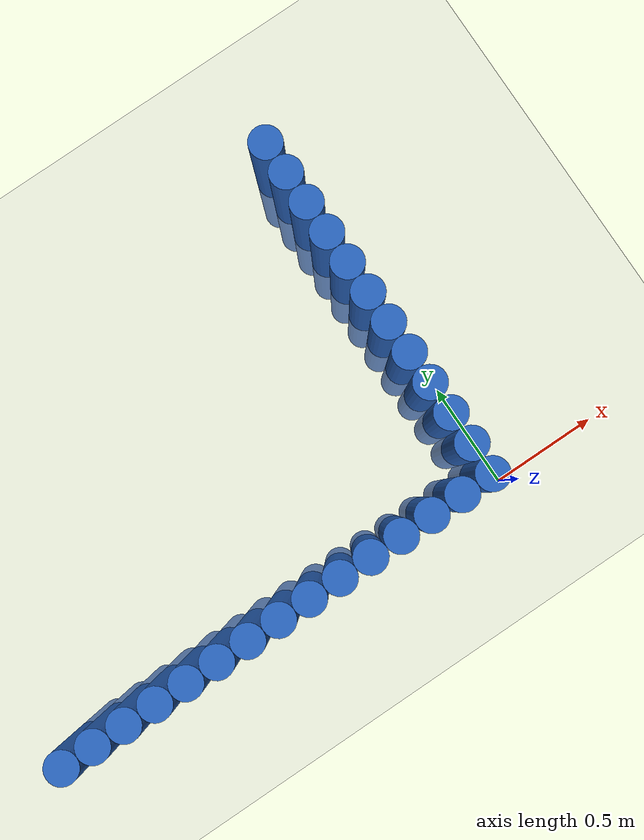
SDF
<sdf version="1.6">
 <world name="world_9">
  <model name="ground_plane">
   <static>1</static>
   <link name="link">
    <collision name="collision">
     <geometry><plane><normal>0 0 1</normal><size>100 100</size></plane></geometry>
     <surface><friction><ode><mu>100</mu><mu2>50</mu2></ode></friction></surface>
    </collision>
    <visual name="visual">
     <cast_shadows>0</cast_shadows>
     <geometry><plane><normal>0 0 1</normal><size>100 100</size></plane></geometry>
     <material>
      <script><uri>file://media/materials/scripts/gazebo.material</uri><name>Gazebo/Grey</name></script>
     </material>
    </visual>
   </link>
  </model>
  <model name="unit_cylinder_0">
   <static>1</static>
   <pose>-0.075000 0.075000 0.000000 0.000000 0.000000 0.000000</pose>
   <link name="link">
    <inertial>
     <mass>1</mass>
     <inertia><ixx>0.145833</ixx><ixy>0</ixy><ixz>0</ixz><iyy>0.145833</iyy><iyz>0</iyz><izz>0.125</izz></inertia>
    </inertial>
    <collision name="collision">
     <geometry><cylinder><radius>0.075000</radius><length>1</length></cylinder></geometry>
    </collision>
    <visual name="visual">
     <geometry><cylinder><radius>0.075000</radius><length>1</length></cylinder></geometry>
     <material>
      <ambient>0.152000 0.379000 0.720000 1</ambient>
      <diffuse>0.152000 0.379000 0.720000 1</diffuse>
     </material>
     <material>
      <script><name>Gazebo/Grey</name><uri>file://media/materials/scripts/gazebo.material</uri></script>
     </material>
    </visual>
   </link>
  </model>
  <model name="unit_cylinder_1">
   <static>1</static>
   <pose>-0.225000 0.075000 0.000000 0.000000 0.000000 0.000000</pose>
   <link name="link">
    <inertial>
     <mass>1</mass>
     <inertia><ixx>0.145833</ixx><ixy>0</ixy><ixz>0</ixz><iyy>0.145833</iyy><iyz>0</iyz><izz>0.125</izz></inertia>
    </inertial>
    <collision name="collision">
     <geometry><cylinder><radius>0.075000</radius><length>1</length></cylinder></geometry>
    </collision>
    <visual name="visual">
     <geometry><cylinder><radius>0.075000</radius><length>1</length></cylinder></geometry>
     <material>
      <ambient>0.152000 0.379000 0.720000 1</ambient>
      <diffuse>0.152000 0.379000 0.720000 1</diffuse>
     </material>
     <material>
      <script><name>Gazebo/Grey</name><uri>file://media/materials/scripts/gazebo.material</uri></script>
     </material>
    </visual>
   </link>
  </model>
  <model name="unit_cylinder_2">
   <static>1</static>
   <pose>-0.375000 0.075000 0.000000 0.000000 0.000000 0.000000</pose>
   <link name="link">
    <inertial>
     <mass>1</mass>
     <inertia><ixx>0.145833</ixx><ixy>0</ixy><ixz>0</ixz><iyy>0.145833</iyy><iyz>0</iyz><izz>0.125</izz></inertia>
    </inertial>
    <collision name="collision">
     <geometry><cylinder><radius>0.075000</radius><length>1</length></cylinder></geometry>
    </collision>
    <visual name="visual">
     <geometry><cylinder><radius>0.075000</radius><length>1</length></cylinder></geometry>
     <material>
      <ambient>0.152000 0.379000 0.720000 1</ambient>
      <diffuse>0.152000 0.379000 0.720000 1</diffuse>
     </material>
     <material>
      <script><name>Gazebo/Grey</name><uri>file://media/materials/scripts/gazebo.material</uri></script>
     </material>
    </visual>
   </link>
  </model>
  <model name="unit_cylinder_3">
   <static>1</static>
   <pose>-0.525000 0.075000 0.000000 0.000000 0.000000 0.000000</pose>
   <link name="link">
    <inertial>
     <mass>1</mass>
     <inertia><ixx>0.145833</ixx><ixy>0</ixy><ixz>0</ixz><iyy>0.145833</iyy><iyz>0</iyz><izz>0.125</izz></inertia>
    </inertial>
    <collision name="collision">
     <geometry><cylinder><radius>0.075000</radius><length>1</length></cylinder></geometry>
    </collision>
    <visual name="visual">
     <geometry><cylinder><radius>0.075000</radius><length>1</length></cylinder></geometry>
     <material>
      <ambient>0.152000 0.379000 0.720000 1</ambient>
      <diffuse>0.152000 0.379000 0.720000 1</diffuse>
     </material>
     <material>
      <script><name>Gazebo/Grey</name><uri>file://media/materials/scripts/gazebo.material</uri></script>
     </material>
    </visual>
   </link>
  </model>
  <model name="unit_cylinder_4">
   <static>1</static>
   <pose>-0.675000 0.075000 0.000000 0.000000 0.000000 0.000000</pose>
   <link name="link">
    <inertial>
     <mass>1</mass>
     <inertia><ixx>0.145833</ixx><ixy>0</ixy><ixz>0</ixz><iyy>0.145833</iyy><iyz>0</iyz><izz>0.125</izz></inertia>
    </inertial>
    <collision name="collision">
     <geometry><cylinder><radius>0.075000</radius><length>1</length></cylinder></geometry>
    </collision>
    <visual name="visual">
     <geometry><cylinder><radius>0.075000</radius><length>1</length></cylinder></geometry>
     <material>
      <ambient>0.152000 0.379000 0.720000 1</ambient>
      <diffuse>0.152000 0.379000 0.720000 1</diffuse>
     </material>
     <material>
      <script><name>Gazebo/Grey</name><uri>file://media/materials/scripts/gazebo.material</uri></script>
     </material>
    </visual>
   </link>
  </model>
  <model name="unit_cylinder_5">
   <static>1</static>
   <pose>-0.825000 0.075000 0.000000 0.000000 0.000000 0.000000</pose>
   <link name="link">
    <inertial>
     <mass>1</mass>
     <inertia><ixx>0.145833</ixx><ixy>0</ixy><ixz>0</ixz><iyy>0.145833</iyy><iyz>0</iyz><izz>0.125</izz></inertia>
    </inertial>
    <collision name="collision">
     <geometry><cylinder><radius>0.075000</radius><length>1</length></cylinder></geometry>
    </collision>
    <visual name="visual">
     <geometry><cylinder><radius>0.075000</radius><length>1</length></cylinder></geometry>
     <material>
      <ambient>0.152000 0.379000 0.720000 1</ambient>
      <diffuse>0.152000 0.379000 0.720000 1</diffuse>
     </material>
     <material>
      <script><name>Gazebo/Grey</name><uri>file://media/materials/scripts/gazebo.material</uri></script>
     </material>
    </visual>
   </link>
  </model>
  <model name="unit_cylinder_6">
   <static>1</static>
   <pose>-0.975000 0.075000 0.000000 0.000000 0.000000 0.000000</pose>
   <link name="link">
    <inertial>
     <mass>1</mass>
     <inertia><ixx>0.145833</ixx><ixy>0</ixy><ixz>0</ixz><iyy>0.145833</iyy><iyz>0</iyz><izz>0.125</izz></inertia>
    </inertial>
    <collision name="collision">
     <geometry><cylinder><radius>0.075000</radius><length>1</length></cylinder></geometry>
    </collision>
    <visual name="visual">
     <geometry><cylinder><radius>0.075000</radius><length>1</length></cylinder></geometry>
     <material>
      <ambient>0.152000 0.379000 0.720000 1</ambient>
      <diffuse>0.152000 0.379000 0.720000 1</diffuse>
     </material>
     <material>
      <script><name>Gazebo/Grey</name><uri>file://media/materials/scripts/gazebo.material</uri></script>
     </material>
    </visual>
   </link>
  </model>
  <model name="unit_cylinder_7">
   <static>1</static>
   <pose>-1.125000 0.075000 0.000000 0.000000 0.000000 0.000000</pose>
   <link name="link">
    <inertial>
     <mass>1</mass>
     <inertia><ixx>0.145833</ixx><ixy>0</ixy><ixz>0</ixz><iyy>0.145833</iyy><iyz>0</iyz><izz>0.125</izz></inertia>
    </inertial>
    <collision name="collision">
     <geometry><cylinder><radius>0.075000</radius><length>1</length></cylinder></geometry>
    </collision>
    <visual name="visual">
     <geometry><cylinder><radius>0.075000</radius><length>1</length></cylinder></geometry>
     <material>
      <ambient>0.152000 0.379000 0.720000 1</ambient>
      <diffuse>0.152000 0.379000 0.720000 1</diffuse>
     </material>
     <material>
      <script><name>Gazebo/Grey</name><uri>file://media/materials/scripts/gazebo.material</uri></script>
     </material>
    </visual>
   </link>
  </model>
  <model name="unit_cylinder_8">
   <static>1</static>
   <pose>-1.275000 0.075000 0.000000 0.000000 0.000000 0.000000</pose>
   <link name="link">
    <inertial>
     <mass>1</mass>
     <inertia><ixx>0.145833</ixx><ixy>0</ixy><ixz>0</ixz><iyy>0.145833</iyy><iyz>0</iyz><izz>0.125</izz></inertia>
    </inertial>
    <collision name="collision">
     <geometry><cylinder><radius>0.075000</radius><length>1</length></cylinder></geometry>
    </collision>
    <visual name="visual">
     <geometry><cylinder><radius>0.075000</radius><length>1</length></cylinder></geometry>
     <material>
      <ambient>0.152000 0.379000 0.720000 1</ambient>
      <diffuse>0.152000 0.379000 0.720000 1</diffuse>
     </material>
     <material>
      <script><name>Gazebo/Grey</name><uri>file://media/materials/scripts/gazebo.material</uri></script>
     </material>
    </visual>
   </link>
  </model>
  <model name="unit_cylinder_9">
   <static>1</static>
   <pose>-1.425000 0.075000 0.000000 0.000000 0.000000 0.000000</pose>
   <link name="link">
    <inertial>
     <mass>1</mass>
     <inertia><ixx>0.145833</ixx><ixy>0</ixy><ixz>0</ixz><iyy>0.145833</iyy><iyz>0</iyz><izz>0.125</izz></inertia>
    </inertial>
    <collision name="collision">
     <geometry><cylinder><radius>0.075000</radius><length>1</length></cylinder></geometry>
    </collision>
    <visual name="visual">
     <geometry><cylinder><radius>0.075000</radius><length>1</length></cylinder></geometry>
     <material>
      <ambient>0.152000 0.379000 0.720000 1</ambient>
      <diffuse>0.152000 0.379000 0.720000 1</diffuse>
     </material>
     <material>
      <script><name>Gazebo/Grey</name><uri>file://media/materials/scripts/gazebo.material</uri></script>
     </material>
    </visual>
   </link>
  </model>
  <model name="unit_cylinder_10">
   <static>1</static>
   <pose>-1.575000 0.075000 0.000000 0.000000 0.000000 0.000000</pose>
   <link name="link">
    <inertial>
     <mass>1</mass>
     <inertia><ixx>0.145833</ixx><ixy>0</ixy><ixz>0</ixz><iyy>0.145833</iyy><iyz>0</iyz><izz>0.125</izz></inertia>
    </inertial>
    <collision name="collision">
     <geometry><cylinder><radius>0.075000</radius><length>1</length></cylinder></geometry>
    </collision>
    <visual name="visual">
     <geometry><cylinder><radius>0.075000</radius><length>1</length></cylinder></geometry>
     <material>
      <ambient>0.152000 0.379000 0.720000 1</ambient>
      <diffuse>0.152000 0.379000 0.720000 1</diffuse>
     </material>
     <material>
      <script><name>Gazebo/Grey</name><uri>file://media/materials/scripts/gazebo.material</uri></script>
     </material>
    </visual>
   </link>
  </model>
  <model name="unit_cylinder_11">
   <static>1</static>
   <pose>-1.725000 0.075000 0.000000 0.000000 0.000000 0.000000</pose>
   <link name="link">
    <inertial>
     <mass>1</mass>
     <inertia><ixx>0.145833</ixx><ixy>0</ixy><ixz>0</ixz><iyy>0.145833</iyy><iyz>0</iyz><izz>0.125</izz></inertia>
    </inertial>
    <collision name="collision">
     <geometry><cylinder><radius>0.075000</radius><length>1</length></cylinder></geometry>
    </collision>
    <visual name="visual">
     <geometry><cylinder><radius>0.075000</radius><length>1</length></cylinder></geometry>
     <material>
      <ambient>0.152000 0.379000 0.720000 1</ambient>
      <diffuse>0.152000 0.379000 0.720000 1</diffuse>
     </material>
     <material>
      <script><name>Gazebo/Grey</name><uri>file://media/materials/scripts/gazebo.material</uri></script>
     </material>
    </visual>
   </link>
  </model>
  <model name="unit_cylinder_12">
   <static>1</static>
   <pose>-1.875000 0.075000 0.000000 0.000000 0.000000 0.000000</pose>
   <link name="link">
    <inertial>
     <mass>1</mass>
     <inertia><ixx>0.145833</ixx><ixy>0</ixy><ixz>0</ixz><iyy>0.145833</iyy><iyz>0</iyz><izz>0.125</izz></inertia>
    </inertial>
    <collision name="collision">
     <geometry><cylinder><radius>0.075000</radius><length>1</length></cylinder></geometry>
    </collision>
    <visual name="visual">
     <geometry><cylinder><radius>0.075000</radius><length>1</length></cylinder></geometry>
     <material>
      <ambient>0.152000 0.379000 0.720000 1</ambient>
      <diffuse>0.152000 0.379000 0.720000 1</diffuse>
     </material>
     <material>
      <script><name>Gazebo/Grey</name><uri>file://media/materials/scripts/gazebo.material</uri></script>
     </material>
    </visual>
   </link>
  </model>
  <model name="unit_cylinder_13">
   <static>1</static>
   <pose>-2.025000 0.075000 0.000000 0.000000 0.000000 0.000000</pose>
   <link name="link">
    <inertial>
     <mass>1</mass>
     <inertia><ixx>0.145833</ixx><ixy>0</ixy><ixz>0</ixz><iyy>0.145833</iyy><iyz>0</iyz><izz>0.125</izz></inertia>
    </inertial>
    <collision name="collision">
     <geometry><cylinder><radius>0.075000</radius><length>1</length></cylinder></geometry>
    </collision>
    <visual name="visual">
     <geometry><cylinder><radius>0.075000</radius><length>1</length></cylinder></geometry>
     <material>
      <ambient>0.152000 0.379000 0.720000 1</ambient>
      <diffuse>0.152000 0.379000 0.720000 1</diffuse>
     </material>
     <material>
      <script><name>Gazebo/Grey</name><uri>file://media/materials/scripts/gazebo.material</uri></script>
     </material>
    </visual>
   </link>
  </model>
  <model name="unit_cylinder_14">
   <static>1</static>
   <pose>-2.175000 0.075000 0.000000 0.000000 0.000000 0.000000</pose>
   <link name="link">
    <inertial>
     <mass>1</mass>
     <inertia><ixx>0.145833</ixx><ixy>0</ixy><ixz>0</ixz><iyy>0.145833</iyy><iyz>0</iyz><izz>0.125</izz></inertia>
    </inertial>
    <collision name="collision">
     <geometry><cylinder><radius>0.075000</radius><length>1</length></cylinder></geometry>
    </collision>
    <visual name="visual">
     <geometry><cylinder><radius>0.075000</radius><length>1</length></cylinder></geometry>
     <material>
      <ambient>0.152000 0.379000 0.720000 1</ambient>
      <diffuse>0.152000 0.379000 0.720000 1</diffuse>
     </material>
     <material>
      <script><name>Gazebo/Grey</name><uri>file://media/materials/scripts/gazebo.material</uri></script>
     </material>
    </visual>
   </link>
  </model>
  <model name="unit_cylinder_30">
   <static>1</static>
   <pose>-0.075000 0.225000 0.000000 0.000000 0.000000 0.000000</pose>
   <link name="link">
    <inertial>
     <mass>1</mass>
     <inertia><ixx>0.145833</ixx><ixy>0</ixy><ixz>0</ixz><iyy>0.145833</iyy><iyz>0</iyz><izz>0.125</izz></inertia>
    </inertial>
    <collision name="collision">
     <geometry><cylinder><radius>0.075000</radius><length>1</length></cylinder></geometry>
    </collision>
    <visual name="visual">
     <geometry><cylinder><radius>0.075000</radius><length>1</length></cylinder></geometry>
     <material>
      <ambient>0.152000 0.379000 0.720000 1</ambient>
      <diffuse>0.152000 0.379000 0.720000 1</diffuse>
     </material>
     <material>
      <script><name>Gazebo/Grey</name><uri>file://media/materials/scripts/gazebo.material</uri></script>
     </material>
    </visual>
   </link>
  </model>
  <model name="unit_cylinder_32">
   <static>1</static>
   <pose>-0.075000 0.375000 0.000000 0.000000 0.000000 0.000000</pose>
   <link name="link">
    <inertial>
     <mass>1</mass>
     <inertia><ixx>0.145833</ixx><ixy>0</ixy><ixz>0</ixz><iyy>0.145833</iyy><iyz>0</iyz><izz>0.125</izz></inertia>
    </inertial>
    <collision name="collision">
     <geometry><cylinder><radius>0.075000</radius><length>1</length></cylinder></geometry>
    </collision>
    <visual name="visual">
     <geometry><cylinder><radius>0.075000</radius><length>1</length></cylinder></geometry>
     <material>
      <ambient>0.152000 0.379000 0.720000 1</ambient>
      <diffuse>0.152000 0.379000 0.720000 1</diffuse>
     </material>
     <material>
      <script><name>Gazebo/Grey</name><uri>file://media/materials/scripts/gazebo.material</uri></script>
     </material>
    </visual>
   </link>
  </model>
  <model name="unit_cylinder_34">
   <static>1</static>
   <pose>-0.075000 0.525000 0.000000 0.000000 0.000000 0.000000</pose>
   <link name="link">
    <inertial>
     <mass>1</mass>
     <inertia><ixx>0.145833</ixx><ixy>0</ixy><ixz>0</ixz><iyy>0.145833</iyy><iyz>0</iyz><izz>0.125</izz></inertia>
    </inertial>
    <collision name="collision">
     <geometry><cylinder><radius>0.075000</radius><length>1</length></cylinder></geometry>
    </collision>
    <visual name="visual">
     <geometry><cylinder><radius>0.075000</radius><length>1</length></cylinder></geometry>
     <material>
      <ambient>0.152000 0.379000 0.720000 1</ambient>
      <diffuse>0.152000 0.379000 0.720000 1</diffuse>
     </material>
     <material>
      <script><name>Gazebo/Grey</name><uri>file://media/materials/scripts/gazebo.material</uri></script>
     </material>
    </visual>
   </link>
  </model>
  <model name="unit_cylinder_36">
   <static>1</static>
   <pose>-0.075000 0.675000 0.000000 0.000000 0.000000 0.000000</pose>
   <link name="link">
    <inertial>
     <mass>1</mass>
     <inertia><ixx>0.145833</ixx><ixy>0</ixy><ixz>0</ixz><iyy>0.145833</iyy><iyz>0</iyz><izz>0.125</izz></inertia>
    </inertial>
    <collision name="collision">
     <geometry><cylinder><radius>0.075000</radius><length>1</length></cylinder></geometry>
    </collision>
    <visual name="visual">
     <geometry><cylinder><radius>0.075000</radius><length>1</length></cylinder></geometry>
     <material>
      <ambient>0.152000 0.379000 0.720000 1</ambient>
      <diffuse>0.152000 0.379000 0.720000 1</diffuse>
     </material>
     <material>
      <script><name>Gazebo/Grey</name><uri>file://media/materials/scripts/gazebo.material</uri></script>
     </material>
    </visual>
   </link>
  </model>
  <model name="unit_cylinder_38">
   <static>1</static>
   <pose>-0.075000 0.825000 0.000000 0.000000 0.000000 0.000000</pose>
   <link name="link">
    <inertial>
     <mass>1</mass>
     <inertia><ixx>0.145833</ixx><ixy>0</ixy><ixz>0</ixz><iyy>0.145833</iyy><iyz>0</iyz><izz>0.125</izz></inertia>
    </inertial>
    <collision name="collision">
     <geometry><cylinder><radius>0.075000</radius><length>1</length></cylinder></geometry>
    </collision>
    <visual name="visual">
     <geometry><cylinder><radius>0.075000</radius><length>1</length></cylinder></geometry>
     <material>
      <ambient>0.152000 0.379000 0.720000 1</ambient>
      <diffuse>0.152000 0.379000 0.720000 1</diffuse>
     </material>
     <material>
      <script><name>Gazebo/Grey</name><uri>file://media/materials/scripts/gazebo.material</uri></script>
     </material>
    </visual>
   </link>
  </model>
  <model name="unit_cylinder_40">
   <static>1</static>
   <pose>-0.075000 0.975000 0.000000 0.000000 0.000000 0.000000</pose>
   <link name="link">
    <inertial>
     <mass>1</mass>
     <inertia><ixx>0.145833</ixx><ixy>0</ixy><ixz>0</ixz><iyy>0.145833</iyy><iyz>0</iyz><izz>0.125</izz></inertia>
    </inertial>
    <collision name="collision">
     <geometry><cylinder><radius>0.075000</radius><length>1</length></cylinder></geometry>
    </collision>
    <visual name="visual">
     <geometry><cylinder><radius>0.075000</radius><length>1</length></cylinder></geometry>
     <material>
      <ambient>0.152000 0.379000 0.720000 1</ambient>
      <diffuse>0.152000 0.379000 0.720000 1</diffuse>
     </material>
     <material>
      <script><name>Gazebo/Grey</name><uri>file://media/materials/scripts/gazebo.material</uri></script>
     </material>
    </visual>
   </link>
  </model>
  <model name="unit_cylinder_42">
   <static>1</static>
   <pose>-0.075000 1.125000 0.000000 0.000000 0.000000 0.000000</pose>
   <link name="link">
    <inertial>
     <mass>1</mass>
     <inertia><ixx>0.145833</ixx><ixy>0</ixy><ixz>0</ixz><iyy>0.145833</iyy><iyz>0</iyz><izz>0.125</izz></inertia>
    </inertial>
    <collision name="collision">
     <geometry><cylinder><radius>0.075000</radius><length>1</length></cylinder></geometry>
    </collision>
    <visual name="visual">
     <geometry><cylinder><radius>0.075000</radius><length>1</length></cylinder></geometry>
     <material>
      <ambient>0.152000 0.379000 0.720000 1</ambient>
      <diffuse>0.152000 0.379000 0.720000 1</diffuse>
     </material>
     <material>
      <script><name>Gazebo/Grey</name><uri>file://media/materials/scripts/gazebo.material</uri></script>
     </material>
    </visual>
   </link>
  </model>
  <model name="unit_cylinder_44">
   <static>1</static>
   <pose>-0.075000 1.275000 0.000000 0.000000 0.000000 0.000000</pose>
   <link name="link">
    <inertial>
     <mass>1</mass>
     <inertia><ixx>0.145833</ixx><ixy>0</ixy><ixz>0</ixz><iyy>0.145833</iyy><iyz>0</iyz><izz>0.125</izz></inertia>
    </inertial>
    <collision name="collision">
     <geometry><cylinder><radius>0.075000</radius><length>1</length></cylinder></geometry>
    </collision>
    <visual name="visual">
     <geometry><cylinder><radius>0.075000</radius><length>1</length></cylinder></geometry>
     <material>
      <ambient>0.152000 0.379000 0.720000 1</ambient>
      <diffuse>0.152000 0.379000 0.720000 1</diffuse>
     </material>
     <material>
      <script><name>Gazebo/Grey</name><uri>file://media/materials/scripts/gazebo.material</uri></script>
     </material>
    </visual>
   </link>
  </model>
  <model name="unit_cylinder_46">
   <static>1</static>
   <pose>-0.075000 1.425000 0.000000 0.000000 0.000000 0.000000</pose>
   <link name="link">
    <inertial>
     <mass>1</mass>
     <inertia><ixx>0.145833</ixx><ixy>0</ixy><ixz>0</ixz><iyy>0.145833</iyy><iyz>0</iyz><izz>0.125</izz></inertia>
    </inertial>
    <collision name="collision">
     <geometry><cylinder><radius>0.075000</radius><length>1</length></cylinder></geometry>
    </collision>
    <visual name="visual">
     <geometry><cylinder><radius>0.075000</radius><length>1</length></cylinder></geometry>
     <material>
      <ambient>0.152000 0.379000 0.720000 1</ambient>
      <diffuse>0.152000 0.379000 0.720000 1</diffuse>
     </material>
     <material>
      <script><name>Gazebo/Grey</name><uri>file://media/materials/scripts/gazebo.material</uri></script>
     </material>
    </visual>
   </link>
  </model>
  <model name="unit_cylinder_48">
   <static>1</static>
   <pose>-0.075000 1.575000 0.000000 0.000000 0.000000 0.000000</pose>
   <link name="link">
    <inertial>
     <mass>1</mass>
     <inertia><ixx>0.145833</ixx><ixy>0</ixy><ixz>0</ixz><iyy>0.145833</iyy><iyz>0</iyz><izz>0.125</izz></inertia>
    </inertial>
    <collision name="collision">
     <geometry><cylinder><radius>0.075000</radius><length>1</length></cylinder></geometry>
    </collision>
    <visual name="visual">
     <geometry><cylinder><radius>0.075000</radius><length>1</length></cylinder></geometry>
     <material>
      <ambient>0.152000 0.379000 0.720000 1</ambient>
      <diffuse>0.152000 0.379000 0.720000 1</diffuse>
     </material>
     <material>
      <script><name>Gazebo/Grey</name><uri>file://media/materials/scripts/gazebo.material</uri></script>
     </material>
    </visual>
   </link>
  </model>
  <model name="unit_cylinder_50">
   <static>1</static>
   <pose>-0.075000 1.725000 0.000000 0.000000 0.000000 0.000000</pose>
   <link name="link">
    <inertial>
     <mass>1</mass>
     <inertia><ixx>0.145833</ixx><ixy>0</ixy><ixz>0</ixz><iyy>0.145833</iyy><iyz>0</iyz><izz>0.125</izz></inertia>
    </inertial>
    <collision name="collision">
     <geometry><cylinder><radius>0.075000</radius><length>1</length></cylinder></geometry>
    </collision>
    <visual name="visual">
     <geometry><cylinder><radius>0.075000</radius><length>1</length></cylinder></geometry>
     <material>
      <ambient>0.152000 0.379000 0.720000 1</ambient>
      <diffuse>0.152000 0.379000 0.720000 1</diffuse>
     </material>
     <material>
      <script><name>Gazebo/Grey</name><uri>file://media/materials/scripts/gazebo.material</uri></script>
     </material>
    </visual>
   </link>
  </model>
 </world>
</sdf>
